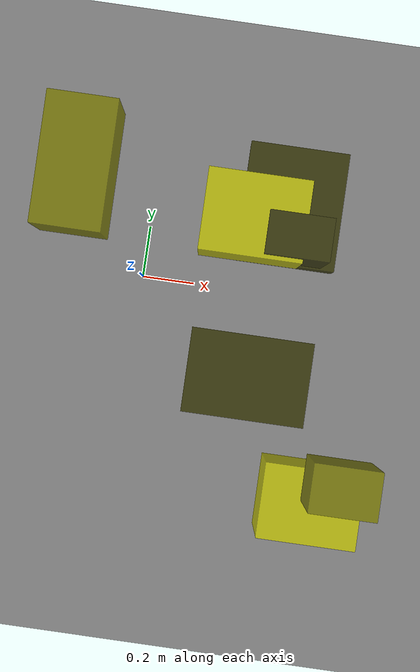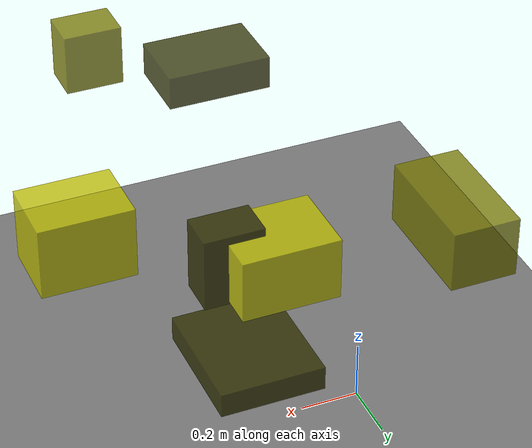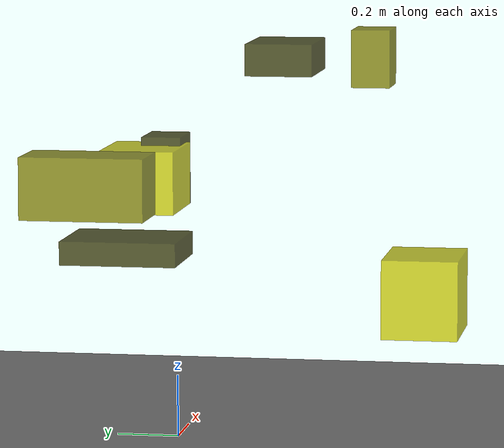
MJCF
<?xml version="1.0"?>
<mujoco model="obstacle_scene">
  <compiler angle="radian" coordinate="local"/>
  <option timestep="0.001" gravity="0 0 -9.81"/>

  <asset>
    <material name="obstacle_mat" rgba="0.8 0.8 0.0 0.8"/>
    <material name="ground_mat" rgba="0.5 0.5 0.5 1"/>
  </asset>

  <worldbody>
    <!-- Ground plane -->
    <geom name="ground" type="plane" size="3 3 0.1" material="ground_mat"/>

    <!-- Obstacles -->
    <body name="obstacle_0" pos="0.519096 0.135081 0.811415">
      <geom name="obs_0" type="box" size="0.098472 0.066564 0.122691" rgba="0.2 0.2 0.0 0.8"/>
    </body>
    <body name="obstacle_1" pos="-0.180308 0.260453 0.841397">
      <geom name="obs_1" type="box" size="0.108961 0.201070 0.101148" rgba="0.5 0.5 0.0 0.8"/>
    </body>
    <body name="obstacle_2" pos="0.720030 -0.730897 0.377045">
      <geom name="obs_2" type="box" size="0.172482 0.130905 0.135891" rgba="0.8 0.8 0.0 0.8"/>
    </body>
    <body name="obstacle_3" pos="0.407087 -0.292737 1.215451">
      <geom name="obs_3" type="box" size="0.161929 0.111556 0.052841" rgba="0.2 0.2 0.0 0.8"/>
    </body>
    <body name="obstacle_4" pos="0.701837 -0.552691 1.192245">
      <geom name="obs_4" type="box" size="0.091493 0.065814 0.097560" rgba="0.5 0.5 0.0 0.8"/>
    </body>
    <body name="obstacle_5" pos="0.379697 0.182014 0.802198">
      <geom name="obs_5" type="box" size="0.159590 0.126179 0.104956" rgba="0.8 0.8 0.0 0.8"/>
    </body>
    <body name="obstacle_6" pos="0.508616 0.271608 0.543091">
      <geom name="obs_6" type="box" size="0.166995 0.199297 0.040236" rgba="0.2 0.2 0.0 0.8"/>
    </body>
  </worldbody>
</mujoco>
